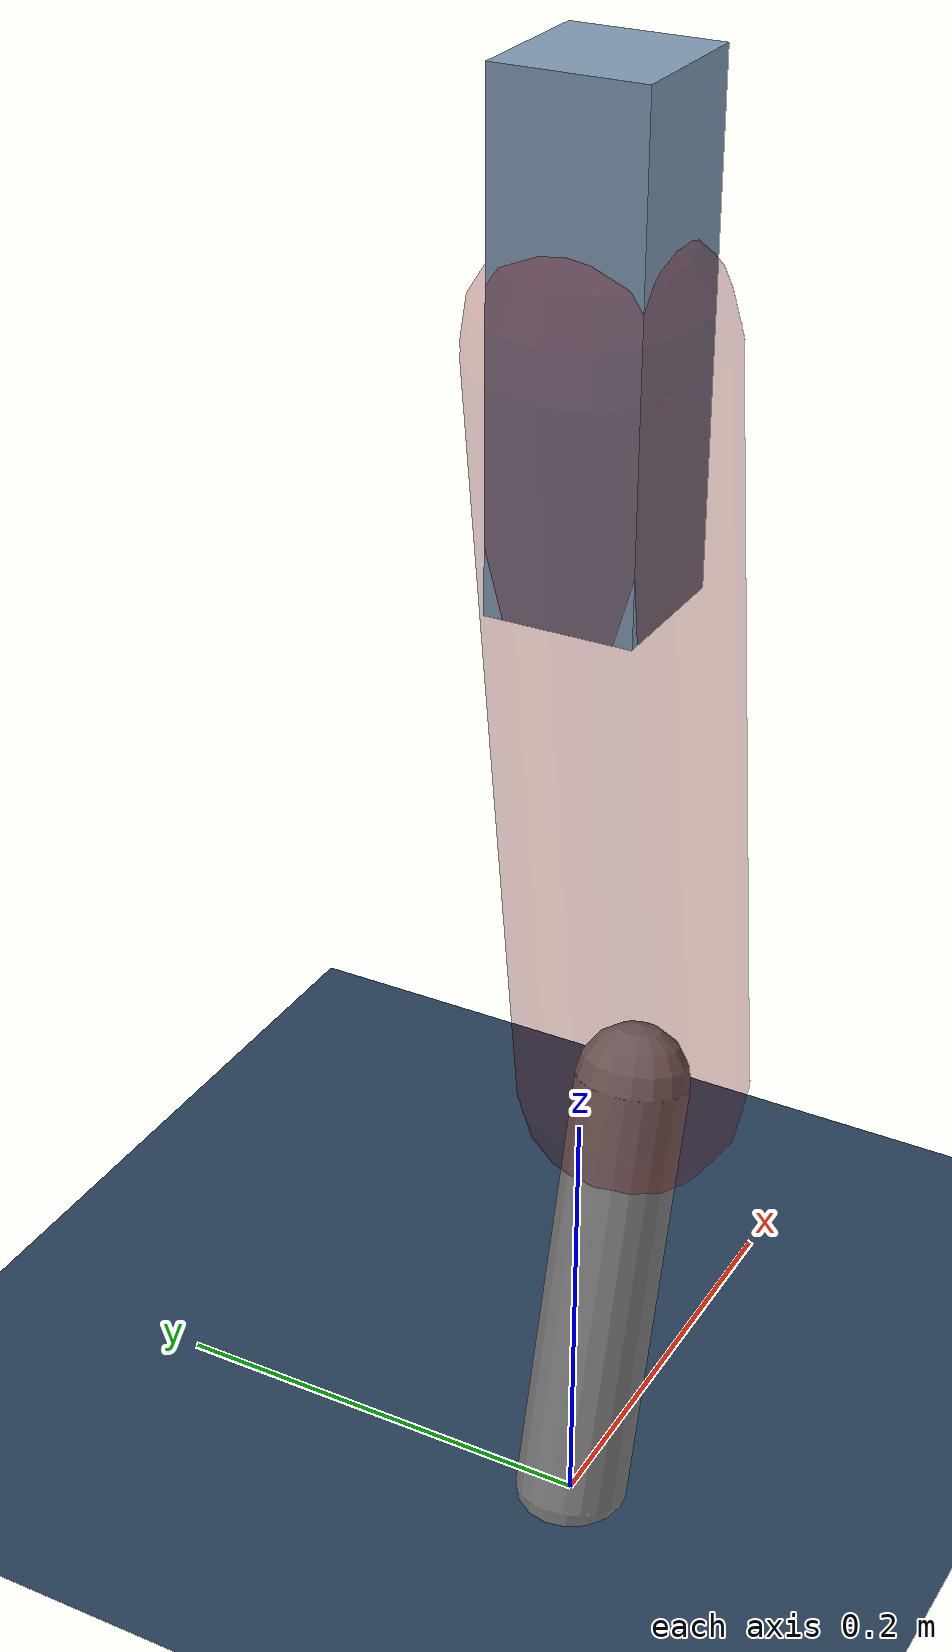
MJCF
<mujoco model="Hopper2D">
	<compiler inertiafromgeom="true" angle="radian" />
	<option timestep="0.001" integrator="implicit" cone="elliptic" solver="Newton" tolerance="1e-10" />

	<default>
		<geom contype="1" conaffinity="1" condim="3" friction="2 0.005 0.0001" solref="0.005 1" />
		<joint limited="true" damping="0.1" />
	</default>

	<asset>
		<texture name="skybox" type="skybox" builtin="gradient" rgb1=".4 .6 .8" rgb2="0 0 0" width="800" height="800" />
		<texture name="grid" type="2d" builtin="checker" rgb1=".1 .2 .3" rgb2=".2 .3 .4" width="300" height="300" mark="edge" markrgb=".2 .3 .4" />
		<material name="ground" texture="grid" texrepeat="1 1" texuniform="true" reflectance="0.1" />
		<material name="leg" rgba="0.5 0.6 0.7 1" />
	</asset>

	<worldbody>

		<geom name="floor" type="plane" size="5 5 0.25" material="ground" />

		<light directional="false" diffuse="0.8 0.8 0.8" specular="0.3 0.3 0.3" pos="0 0 2" dir="0 0 -1" />
		<light mode="targetbodycom" target="base" directional="false" diffuse="0.8 0.8 0.8" specular="0.3 0.3 0.3" pos="0 0 2" dir="0 0 -1" />

		<camera name="fixed" pos="0 -2 1" xyaxes="1 0 0 0 0 1" />
		<camera name="tracking" mode="trackcom" pos="0 -3 1" />

		<body name="root" pos="0 0 0.5389056120493141">
			<joint name="slide_x" type="slide" axis="1 0 0" range="-100 100" />
			<joint name="slide_z" type="slide" axis="0 0 1" range="0 10" />

			<body name="base" pos="0 0 0">
				<geom name="torso" type="box" size="0.03 0.03 0.1" mass="2.432" material="leg" />

				<body name="link1" pos="0 0 0" euler="0 1.4267436424910964 0">
					<joint type="hinge" axis="0 -1 0" pos="0 0 0" name="hinge1" limited="true" range="-3.14 3.14" stiffness="0" damping="0.1" />
					<geom name="thigh" type="capsule" fromto="0 0 0 0.34906468285126097 0 0" size="0.05" rgba="0.5 0 0 0.3" mass="1.1240811119835308" />

					<body name="link2" pos="0.34906468285126097 0 0" euler="0 0.39750691195036875 0">
						<joint type="hinge" axis="0 -1 0" pos="0 0 0" name="hinge2" limited="true" range="-3.14 3.14" stiffness="0" damping="0.1" />
						<geom name="shank" type="capsule" fromto="0 0 0 0.19984092919805316 0 0" size="0.025" mass="0.4007727433584425" />

					</body>
				</body>
			</body>
		</body>
	</worldbody>

	<actuator>
		<motor name="torque1" joint="hinge1" ctrlrange="-73.48841852301372 73.48841852301372" ctrllimited="true" gear="1" />
		<motor name="torque2" joint="hinge2" ctrlrange="-97.82303187689504 97.82303187689504" ctrllimited="true" gear="1" />
	</actuator>
</mujoco>
